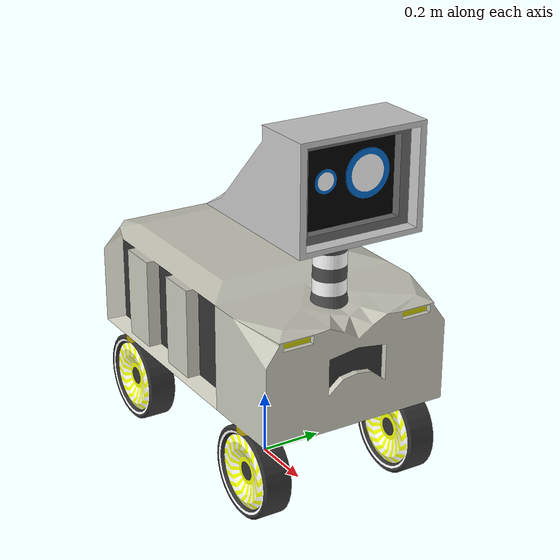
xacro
<?xml version="1.0"?>
<robot name="robot_patrol" xmlns:xacro="http://ros.org/wiki/xacro">

    <!-- Inertial -->
    <xacro:macro name="body_inertial">
        <inertial>
        <mass value="80" />
        <inertia ixx="3.5" ixy="0.0" ixz="0.0" iyy="7.0" iyz="0.0" izz="3.0" />
        </inertial>
    </xacro:macro>

    <xacro:macro name="front_wheel_inertial">
        <inertial>
        <mass value="2.5" />
        <inertia ixx="0.0139" ixy="0.0" ixz="0.0" iyy="0.0245" iyz="0.0" izz="0.0139" />
        </inertial>
    </xacro:macro>

    <xacro:macro name="rear_wheel_inertial">
        <inertial>
        <mass value="5.0" />
        <inertia ixx="0.0139" ixy="0.0" ixz="0.0" iyy="0.0245" iyz="0.0" izz="0.0139" />
        </inertial>
    </xacro:macro>

    <xacro:macro name="neck_inertial">
        <inertial>
        <mass value="4.0" />
        <inertia ixx="0.0220" ixy="0.0" ixz="0.0" iyy="0.0220" iyz="0.0" izz="0.0072" />
        </inertial>
    </xacro:macro>

    <xacro:macro name="head_inertial">
        <inertial>
        <mass value="3.0" />
        <inertia ixx="0.0436" ixy="0.0" ixz="0.0" iyy="0.0661" iyz="0.0" izz="0.1025" />
        </inertial>
    </xacro:macro>

    <xacro:macro name="base_inertial">
        <inertial>
        <mass value="0.001" />
        <inertia ixx="1e-6" ixy="0.0" ixz="0.0" iyy="1e-6" iyz="0.0" izz="1e-6" />
        </inertial>
    </xacro:macro>

    <!-- Friction -->
    <gazebo reference="body_link">
        <mu1>0.5</mu1>
        <mu2>0.5</mu2>
        <kp>40000</kp>
        <kd>300</kd>
    </gazebo>

    <gazebo reference="left_front_wheel">
        <mu1>3.0</mu1>
        <mu2>0.05</mu2>
        <fdir1>1 0 0</fdir1>
        <kp>165000</kp>
        <kd>450</kd>
    </gazebo>

    <gazebo reference="right_front_wheel">
      <mu1>3.0</mu1>
      <mu2>0.05</mu2>
      <fdir1>1 0 0</fdir1>
      <kp>165000</kp>
      <kd>450</kd>
    </gazebo>

    <gazebo reference="left_rear_wheel">
      <mu1>3.0</mu1>
      <mu2>0.05</mu2>
      <fdir1>1 0 0</fdir1>
      <kp>165000</kp>
      <kd>450</kd>
    </gazebo>

    <gazebo reference="right_rear_wheel">
      <mu1>3,0</mu1>
      <mu2>0.05</mu2>
      <fdir1>1 0 0</fdir1>
      <kp>165000</kp>
      <kd>450</kd>
    </gazebo>

    <!-- Base_link -->
    <link name="base_link">
      <xacro:base_inertial/>
    </link>

    <!-- Body Link -->
    <link name="body_link">
        <visual>
            <geometry>
                <mesh filename="package://robot_patrol/meshes/patrol_body.dae"/>
            </geometry>
            <origin xyz="0 0 0"/>
        </visual>
        <collision>
            <geometry>
                <box size="1.0 0.6 0.37"/>
            </geometry>
            <origin xyz="0 0 0"/>
        </collision>
        <xacro:body_inertial/>
    </link>

    <joint name="body_link_to_base_link" type="fixed">
        <parent link="base_link"/>
        <child link="body_link"/>
        <origin xyz="0 0 0.5" rpy="0 0 0"/>
    </joint>

    <!-- Wheel Joint -->
    <xacro:macro name="wheel" params="side reflect">

        <link name="${side}_front_wheel">
            <visual>
                <geometry>
                    <mesh filename="package://robot_patrol/meshes/patrol_tyre.dae"/>
                </geometry>
                <origin xyz="0 0 0" rpy="0 0 0"/>
            </visual>
            <collision>
                <geometry>
                    <cylinder radius="0.16" length="0.2"/>
                </geometry>
                <origin xyz="0 0 0" rpy="1.57 0 0"/>
            </collision>
            <xacro:front_wheel_inertial/>
        </link>

        <joint name="${side}_front_wheel_to_body_link" type="continuous">
            <axis xyz="0 1 0"/>
            <parent link="body_link"/>
            <child link="${side}_front_wheel"/>
            <origin xyz="0.35 ${reflect*0.25} -0.315" rpy="0 0 0"/>
        </joint>

        <link name="${side}_rear_wheel">
            <visual>
                <geometry>
                    <mesh filename="package://robot_patrol/meshes/patrol_tyre.dae"/>
                </geometry>
            </visual>
            <collision>
                <geometry>
                    <cylinder radius="0.16" length="0.2"/>
                </geometry>
                <origin xyz="0 0 0" rpy="1.57 0 0"/>
            </collision>
            <xacro:rear_wheel_inertial/>
        </link>

        <joint name="${side}_rear_wheel_to_body_link" type="continuous">
            <axis xyz="0 1 0"/>
            <parent link="body_link"/>
            <child link="${side}_rear_wheel"/>
            <origin xyz="-0.35 ${reflect*0.25} -0.315" rpy="0 0 0"/>
        </joint>

    </xacro:macro>
    <xacro:wheel side="right" reflect="1"/>
    <xacro:wheel side="left" reflect="-1"/>

    <!-- Neck -->
    <link name="neck_link">
        <visual>
            <geometry>
                <mesh filename="package://robot_patrol/meshes/patrol_neck.dae"/>
            </geometry>
            <origin xyz="0 0 0"/>
        </visual>
        <collision>
            <geometry>
                <cylinder radius="0.06" length="0.25"/>
            </geometry>
            <origin xyz="0 0 0.125"/>
        </collision>
        <xacro:neck_inertial/>
    </link>

    <joint name="neck_link_to_body_link" type="prismatic">
        <axis xyz="0 0 1"/>
        <limit effort="1000" lower="-0.21" upper="0" velocity="30"/>
        <parent link="body_link"/>
        <child link="neck_link"/>
        <origin xyz="0.35 0 0.13"/>
    </joint>

    <!-- Head -->
    <link name="head_link">
        <visual>
            <geometry>
                <mesh filename="package://robot_patrol/meshes/patrol_head.dae"/>
            </geometry>
            <origin xyz="0 0 0"/>
        </visual>
        <collision>
            <geometry>
                <box size="0.4 0.35 0.2"/>
            </geometry>
            <origin xyz="0 -0.03 0.1"/>
        </collision>
        <xacro:head_inertial/>
    </link>

    <joint name="head_link_to_neck_link" type="revolute">
        <axis xyz="0 0 1"/>
        <limit effort="1000" lower="-2.356" upper="2.356" velocity="30"/>
        <parent link="neck_link"/>
        <child link="head_link"/>
        <origin xyz="0 0 0.25"/>
    </joint>

    <!-- ROS2 Control -->
    <ros2_control name="GazeboSystem" type="system">
        <hardware>
            <plugin>gazebo_ros2_control/GazeboSystem</plugin>
        </hardware>

        <joint name="head_link_to_neck_link">
            <command_interface name="position" />
            <command_interface name="velocity" />
            <state_interface name="position"/>
            <state_interface name="velocity"/>
        </joint>

        <joint name="neck_link_to_body_link">
            <command_interface name="position" />
            <command_interface name="velocity" />
            <state_interface name="position"/>
            <state_interface name="velocity"/>
        </joint>

        <joint name="left_front_wheel_to_body_link">
            <command_interface name="velocity" />
            <state_interface name="position"/>
            <state_interface name="velocity"/>
        </joint>

        <joint name="left_rear_wheel_to_body_link">
            <command_interface name="velocity" />
            <state_interface name="position"/>
            <state_interface name="velocity"/>
        </joint>

        <joint name="right_front_wheel_to_body_link">
            <command_interface name="velocity" />
            <state_interface name="position"/>
            <state_interface name="velocity"/>
        </joint>

        <joint name="right_rear_wheel_to_body_link">
            <command_interface name="velocity" />
            <state_interface name="position"/>
            <state_interface name="velocity"/>
        </joint>

    </ros2_control>

    <!-- Gazebo -->
    <gazebo>
        <plugin filename="libgazebo_ros2_control.so" name="gazebo_ros2_control">
            <parameters>$(find robot_patrol)/config/patrol_diffdrive_test.yaml</parameters>
        </plugin>
    </gazebo>

    <!-- LIDAR -->
    <link name="lidar_link"/>

    <joint name="lidar_joint" type="fixed">
        <parent link="head_link"/>
        <child link="lidar_link"/>
        <origin xyz="0.2 0.05 0.09"/>
    </joint>

    <gazebo reference="lidar_link">
        <sensor type="ray" name="lidar_sensor">
        <pose>0 0 0 0 0 0</pose>
        <visualize>true</visualize>
        <update_rate>10</update_rate>
        <ray>
            <scan>
            <horizontal>
                <samples>360</samples>
                <resolution>1</resolution>
                <min_angle>-1.57</min_angle>
                <max_angle>1.57</max_angle>
            </horizontal>
            </scan>
            <range>
            <min>0.12</min>
            <max>10.0</max>
            <resolution>0.01</resolution>
            </range>
            <noise>
            <type>gaussian</type>
            <mean>0.0</mean>
            <stddev>0.01</stddev>
            </noise>
        </ray>

        <plugin name="gazebo_ros_laser" filename="libgazebo_ros_ray_sensor.so">
            <ros>
            <namespace>/</namespace>
            <remapping>/gazebo_ros_laser/out:=/scan</remapping>
            </ros>
            <frame_name>lidar_link</frame_name>
            <output_type>sensor_msgs/LaserScan</output_type>
        </plugin>
        </sensor>
    </gazebo>

    <!-- Camera -->
    <link name="camera_link"/>

    <joint name="camera_joint" type="fixed">
        <parent link="head_link"/>
        <child link="camera_link"/>
        <origin xyz="0.2 -0.05 0.09" rpy="0 0 0"/>
    </joint>

    <gazebo reference="camera_link">
        <sensor name="patrol_cam" type="camera">
        <always_on>true</always_on>
        <update_rate>30</update_rate>
        <visualize>true</visualize>
        <camera>
            <horizontal_fov>1.0944</horizontal_fov>
            <image>
            <width>1280</width>
            <height>720</height>
            <format>R8G8B8</format>
            </image>
            <clip>
            <near>0.1</near>
            <far>100</far>
            </clip>
        </camera>
        <plugin name="camera_controller" filename="libgazebo_ros_camera.so">
            <ros>
            <namespace>/</namespace>
            <remapping>~/image_raw:=/camera/image_raw</remapping>
            <remapping>~/camera_info:=/camera/camera_info</remapping>
            </ros>
            <frame_name>camera_link</frame_name>
        </plugin>
        </sensor>
    </gazebo>

    <!-- IMU tools -->
    <link name="imu_link"/>
    <joint name="base_to_imu" type="fixed">
        <parent link="body_link"/>
        <child link="imu_link"/>
        <origin xyz="0 0 0" rpy="0 0 0"/>
    </joint>

    <gazebo reference="imu_link">
        <sensor name="imu_sensor" type="imu">
        <always_on>true</always_on>
        <update_rate>100</update_rate>
        <visualize>true</visualize>

        <plugin name="imu_plugin" filename="libgazebo_ros_imu_sensor.so">
            <ros>
            <namespace>/</namespace>
            <remapping>~/out:=/imu/data</remapping>
            </ros>
            <frame_name>imu_link</frame_name>
        </plugin>
        </sensor>
    </gazebo>

</robot>
